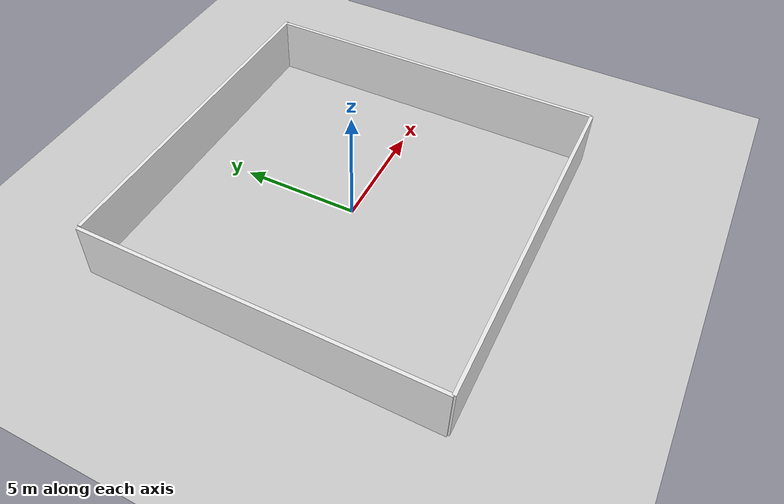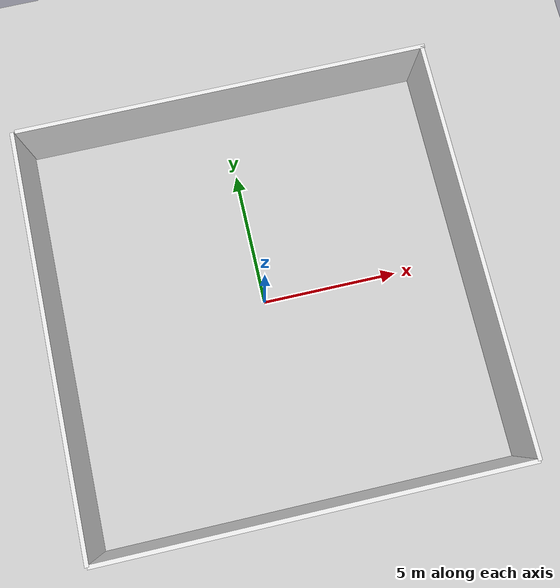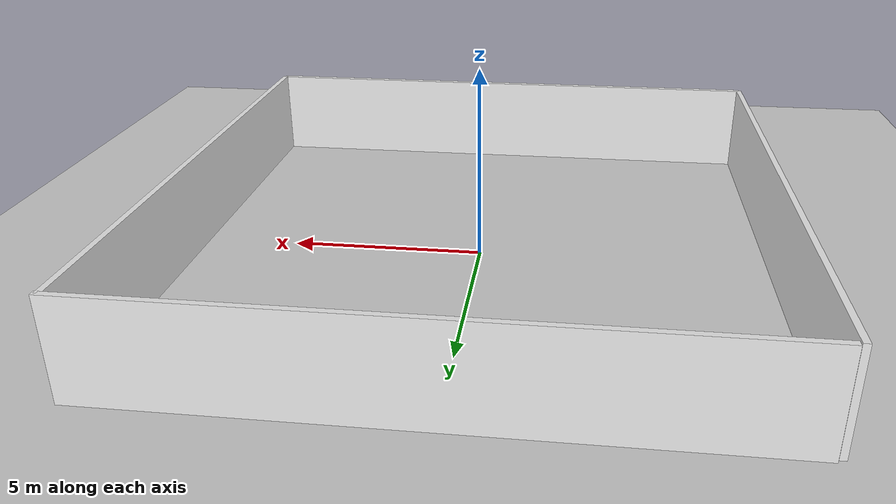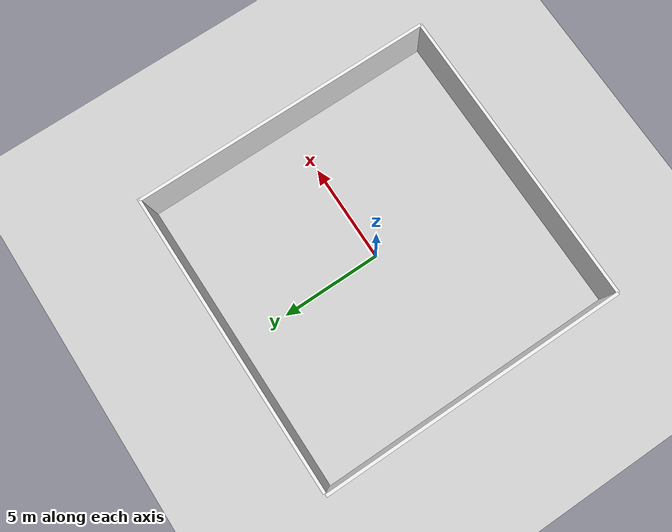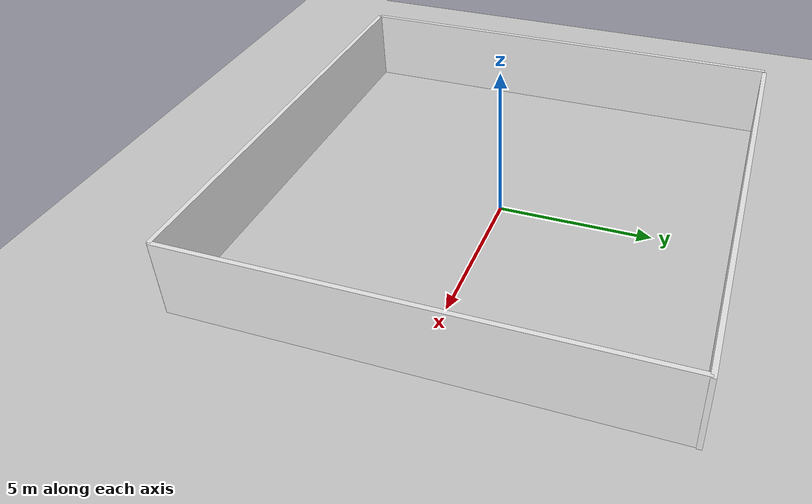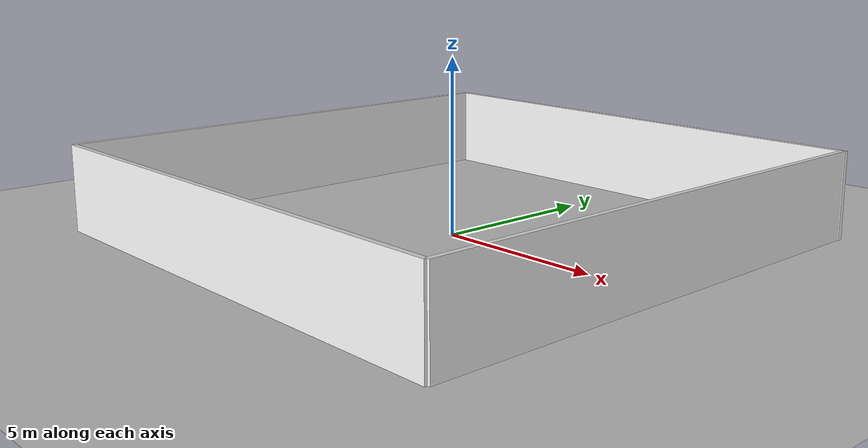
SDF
<sdf version="1.6">
 <world name="default">
  <light name="sun" type="directional">
   <pose>0 0 10 0 -0 0</pose>
   <diffuse>0.8 0.8 0.8 1</diffuse>
   <specular>0.2 0.2 0.2 1</specular>
   <attenuation>
    <range>1000</range>
    <constant>0.9</constant>
    <linear>0.01</linear>
    <quadratic>0.001</quadratic>
   </attenuation>
   <direction>-0.5 0.5 -1</direction>
  </light>
  <model name="ground_plane">
   <static>1</static>
   <link name="link">
    <collision name="collision">
     <geometry><plane><normal>0 0 1</normal><size>100 100</size></plane></geometry>
     <surface>
      <contact><collide_bitmask>65535</collide_bitmask></contact>
      <friction><ode><mu>100</mu><mu2>50</mu2></ode></friction>
     </surface>
    </collision>
    <visual name="visual">
     <cast_shadows>0</cast_shadows>
     <geometry><plane><normal>0 0 1</normal><size>100 100</size></plane></geometry>
     <material>
      <script><uri>file://media/materials/scripts/gazebo.material</uri><name>Gazebo/Grey</name></script>
     </material>
    </visual>
   </link>
  </model>
  <model name="ground_plane">
   <static>1</static>
   <link name="link">
    <collision name="collision">
     <geometry><plane><normal>0 0 1</normal><size>100 100</size></plane></geometry>
     <surface>
      <contact><collide_bitmask>65535</collide_bitmask></contact>
      <friction><ode><mu>100</mu><mu2>50</mu2></ode></friction>
     </surface>
    </collision>
    <visual name="visual">
     <cast_shadows>0</cast_shadows>
     <geometry><plane><normal>0 0 1</normal><size>100 100</size></plane></geometry>
     <material>
      <script><uri>file://media/materials/scripts/gazebo.material</uri><name>Gazebo/Grey</name></script>
     </material>
    </visual>
   </link>
  </model>
  <gravity>0 0 -9.8</gravity>
  <magnetic_field>6e-06 2.3e-05 -4.2e-05</magnetic_field>
  <atmosphere type="adiabatic"/>
  <physics name="default_physics" default="0" type="ode">
   <max_step_size>0.01</max_step_size>
   <real_time_factor>1</real_time_factor>
   <real_time_update_rate>100</real_time_update_rate>
   <ode>
    <solver>
     <type>quick</type>
     <iters>100</iters>
     <precon_iters>0</precon_iters>
     <sor>1</sor>
     <use_dynamic_moi_rescaling>0</use_dynamic_moi_rescaling>
    </solver>
    <constraints>
     <cfm>0</cfm>
     <erp>0.5</erp>
     <contact_max_correcting_vel>1000</contact_max_correcting_vel>
     <contact_surface_layer>0</contact_surface_layer>
    </constraints>
   </ode>
  </physics>
  <scene><ambient>0.4 0.4 0.4 1</ambient><background>0.7 0.7 0.7 1</background><shadows>0</shadows></scene>
  <spherical_coordinates>
   <surface_model>EARTH_WGS84</surface_model>
   <latitude_deg>0</latitude_deg>
   <longitude_deg>0</longitude_deg>
   <elevation>0</elevation>
   <heading_deg>0</heading_deg>
  </spherical_coordinates>
  <audio><device>default</device></audio>
  <model name="wall">
   <link name="Wall_10">
    <inertial>
     <mass>1</mass>
     <inertia><ixx>1</ixx><ixy>0</ixy><ixz>0</ixz><iyy>1</iyy><iyz>0</iyz><izz>1</izz></inertia>
    </inertial>
    <visual name="Wall_10_Visual_0">
     <geometry><box><size>15 0.15 2.5</size></box></geometry>
     <material>
      <script>
       <uri>model://wall/materials/scripts</uri>
       <uri>model://wall/materials/textures</uri>
       <name>wall_white</name>
      </script>
      <shader type="pixel"><normal_map>__default__</normal_map></shader>
      <ambient>1 1 1 1</ambient>
      <diffuse>1 1 1 1</diffuse>
      <specular>0 0 0 1</specular>
      <emissive>0 0 0 1</emissive>
     </material>
     <meta><layer>0</layer></meta>
    </visual>
    <collision name="Wall_10_Collision_0">
     <geometry><box><size>15 0.15 2.5</size></box></geometry>
     <surface>
      <friction>
       <ode><mu>1</mu><mu2>1</mu2><fdir1>0 0 0</fdir1><slip1>0</slip1><slip2>0</slip2></ode>
       <torsional>
        <coefficient>1</coefficient>
        <patch_radius>0</patch_radius>
        <surface_radius>0</surface_radius>
        <use_patch_radius>1</use_patch_radius>
        <ode><slip>0</slip></ode>
       </torsional>
      </friction>
      <bounce><restitution_coefficient>0</restitution_coefficient><threshold>1e+06</threshold></bounce>
      <contact>
       <collide_without_contact>0</collide_without_contact>
       <collide_without_contact_bitmask>1</collide_without_contact_bitmask>
       <collide_bitmask>1</collide_bitmask>
       <ode>
        <soft_cfm>0</soft_cfm>
        <soft_erp>0.2</soft_erp>
        <kp>1e+13</kp>
        <kd>1</kd>
        <max_vel>0.01</max_vel>
        <min_depth>0</min_depth>
       </ode>
       <bullet>
        <split_impulse>1</split_impulse>
        <split_impulse_penetration_threshold>-0.01</split_impulse_penetration_threshold>
        <soft_cfm>0</soft_cfm>
        <soft_erp>0.2</soft_erp>
        <kp>1e+13</kp>
        <kd>1</kd>
       </bullet>
      </contact>
     </surface>
    </collision>
   </link>
   <static>1</static>
   <pose>0 -7.5 1.25 0 -0 0</pose>
  </model>
  <model name="wall_clone">
   <link name="Wall_10">
    <inertial>
     <mass>1</mass>
     <inertia><ixx>1</ixx><ixy>0</ixy><ixz>0</ixz><iyy>1</iyy><iyz>0</iyz><izz>1</izz></inertia>
    </inertial>
    <visual name="Wall_10_Visual_0">
     <geometry><box><size>15 0.15 2.5</size></box></geometry>
     <material>
      <script>
       <uri>model://wall/materials/scripts</uri>
       <uri>model://wall/materials/textures</uri>
       <name>wall_white</name>
      </script>
      <shader type="pixel"><normal_map>__default__</normal_map></shader>
      <ambient>1 1 1 1</ambient>
      <diffuse>1 1 1 1</diffuse>
      <specular>0 0 0 1</specular>
      <emissive>0 0 0 1</emissive>
     </material>
     <meta><layer>0</layer></meta>
    </visual>
    <collision name="Wall_10_Collision_0">
     <geometry><box><size>15 0.15 2.5</size></box></geometry>
     <surface>
      <friction>
       <ode><mu>1</mu><mu2>1</mu2><fdir1>0 0 0</fdir1><slip1>0</slip1><slip2>0</slip2></ode>
       <torsional>
        <coefficient>1</coefficient>
        <patch_radius>0</patch_radius>
        <surface_radius>0</surface_radius>
        <use_patch_radius>1</use_patch_radius>
        <ode><slip>0</slip></ode>
       </torsional>
      </friction>
      <bounce><restitution_coefficient>0</restitution_coefficient><threshold>1e+06</threshold></bounce>
      <contact>
       <collide_without_contact>0</collide_without_contact>
       <collide_without_contact_bitmask>1</collide_without_contact_bitmask>
       <collide_bitmask>1</collide_bitmask>
       <ode>
        <soft_cfm>0</soft_cfm>
        <soft_erp>0.2</soft_erp>
        <kp>1e+13</kp>
        <kd>1</kd>
        <max_vel>0.01</max_vel>
        <min_depth>0</min_depth>
       </ode>
       <bullet>
        <split_impulse>1</split_impulse>
        <split_impulse_penetration_threshold>-0.01</split_impulse_penetration_threshold>
        <soft_cfm>0</soft_cfm>
        <soft_erp>0.2</soft_erp>
        <kp>1e+13</kp>
        <kd>1</kd>
       </bullet>
      </contact>
     </surface>
    </collision>
   </link>
   <static>1</static>
   <pose>0.112197 7.5 1.25 0 -0 0</pose>
  </model>
  <model name="wall_clone_clone">
   <link name="Wall_10">
    <inertial>
     <mass>1</mass>
     <inertia><ixx>1</ixx><ixy>0</ixy><ixz>0</ixz><iyy>1</iyy><iyz>0</iyz><izz>1</izz></inertia>
    </inertial>
    <visual name="Wall_10_Visual_0">
     <geometry><box><size>15 0.15 2.5</size></box></geometry>
     <material>
      <script>
       <uri>model://wall/materials/scripts</uri>
       <uri>model://wall/materials/textures</uri>
       <name>wall_white</name>
      </script>
      <shader type="pixel"><normal_map>__default__</normal_map></shader>
      <ambient>1 1 1 1</ambient>
      <diffuse>1 1 1 1</diffuse>
      <specular>0 0 0 1</specular>
      <emissive>0 0 0 1</emissive>
     </material>
     <meta><layer>0</layer></meta>
    </visual>
    <collision name="Wall_10_Collision_0">
     <geometry><box><size>15 0.15 2.5</size></box></geometry>
     <surface>
      <friction>
       <ode><mu>1</mu><mu2>1</mu2><fdir1>0 0 0</fdir1><slip1>0</slip1><slip2>0</slip2></ode>
       <torsional>
        <coefficient>1</coefficient>
        <patch_radius>0</patch_radius>
        <surface_radius>0</surface_radius>
        <use_patch_radius>1</use_patch_radius>
        <ode><slip>0</slip></ode>
       </torsional>
      </friction>
      <bounce><restitution_coefficient>0</restitution_coefficient><threshold>1e+06</threshold></bounce>
      <contact>
       <collide_without_contact>0</collide_without_contact>
       <collide_without_contact_bitmask>1</collide_without_contact_bitmask>
       <collide_bitmask>1</collide_bitmask>
       <ode>
        <soft_cfm>0</soft_cfm>
        <soft_erp>0.2</soft_erp>
        <kp>1e+13</kp>
        <kd>1</kd>
        <max_vel>0.01</max_vel>
        <min_depth>0</min_depth>
       </ode>
       <bullet>
        <split_impulse>1</split_impulse>
        <split_impulse_penetration_threshold>-0.01</split_impulse_penetration_threshold>
        <soft_cfm>0</soft_cfm>
        <soft_erp>0.2</soft_erp>
        <kp>1e+13</kp>
        <kd>1</kd>
       </bullet>
      </contact>
     </surface>
    </collision>
   </link>
   <static>1</static>
   <pose>7.5 0 1.25 0 -0 1.57</pose>
  </model>
  <model name="wall_clone_clone_clone">
   <link name="Wall_10">
    <inertial>
     <mass>1</mass>
     <inertia><ixx>1</ixx><ixy>0</ixy><ixz>0</ixz><iyy>1</iyy><iyz>0</iyz><izz>1</izz></inertia>
    </inertial>
    <visual name="Wall_10_Visual_0">
     <geometry><box><size>15 0.15 2.5</size></box></geometry>
     <material>
      <script>
       <uri>model://wall/materials/scripts</uri>
       <uri>model://wall/materials/textures</uri>
       <name>wall_white</name>
      </script>
      <shader type="pixel"><normal_map>__default__</normal_map></shader>
      <ambient>1 1 1 1</ambient>
      <diffuse>1 1 1 1</diffuse>
      <specular>0 0 0 1</specular>
      <emissive>0 0 0 1</emissive>
     </material>
     <meta><layer>0</layer></meta>
    </visual>
    <collision name="Wall_10_Collision_0">
     <geometry><box><size>15 0.15 2.5</size></box></geometry>
     <surface>
      <friction>
       <ode><mu>1</mu><mu2>1</mu2><fdir1>0 0 0</fdir1><slip1>0</slip1><slip2>0</slip2></ode>
       <torsional>
        <coefficient>1</coefficient>
        <patch_radius>0</patch_radius>
        <surface_radius>0</surface_radius>
        <use_patch_radius>1</use_patch_radius>
        <ode><slip>0</slip></ode>
       </torsional>
      </friction>
      <bounce><restitution_coefficient>0</restitution_coefficient><threshold>1e+06</threshold></bounce>
      <contact>
       <collide_without_contact>0</collide_without_contact>
       <collide_without_contact_bitmask>1</collide_without_contact_bitmask>
       <collide_bitmask>1</collide_bitmask>
       <ode>
        <soft_cfm>0</soft_cfm>
        <soft_erp>0.2</soft_erp>
        <kp>1e+13</kp>
        <kd>1</kd>
        <max_vel>0.01</max_vel>
        <min_depth>0</min_depth>
       </ode>
       <bullet>
        <split_impulse>1</split_impulse>
        <split_impulse_penetration_threshold>-0.01</split_impulse_penetration_threshold>
        <soft_cfm>0</soft_cfm>
        <soft_erp>0.2</soft_erp>
        <kp>1e+13</kp>
        <kd>1</kd>
       </bullet>
      </contact>
     </surface>
    </collision>
   </link>
   <static>1</static>
   <pose>-7.5 0 1.25 0 -0 1.57</pose>
  </model>
 </world>
</sdf>
